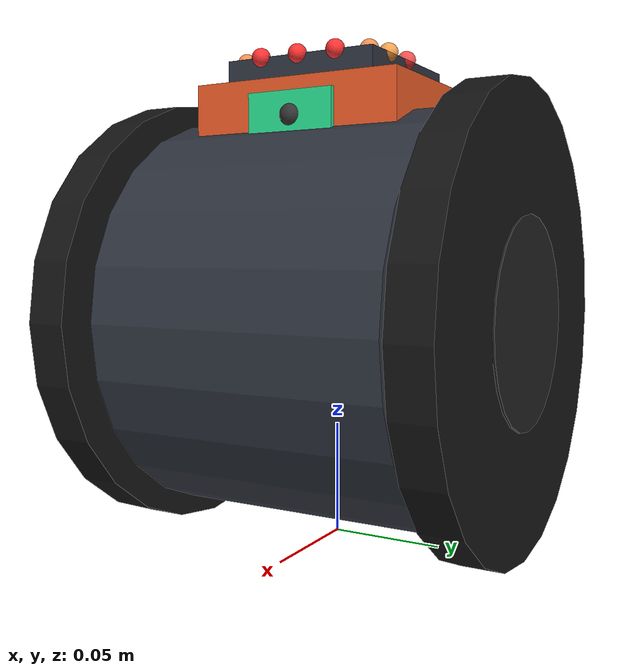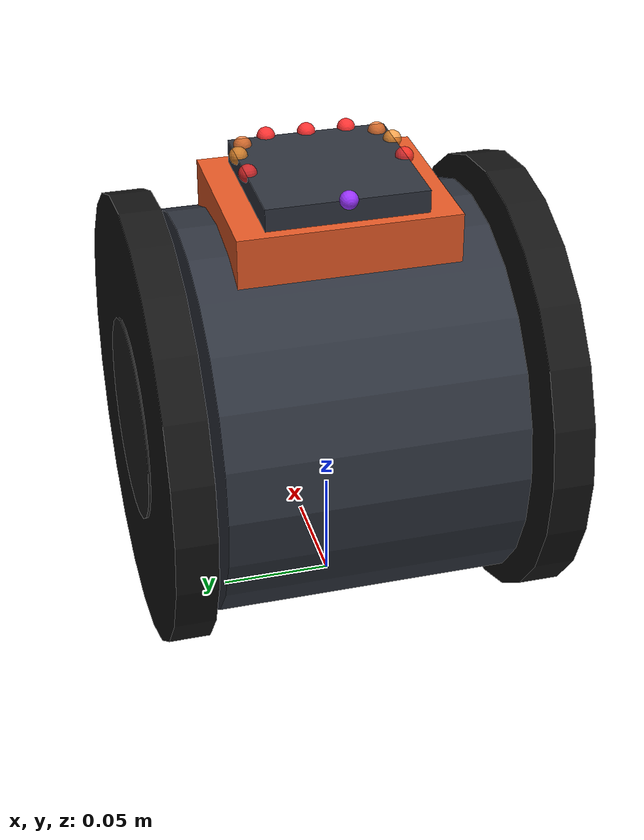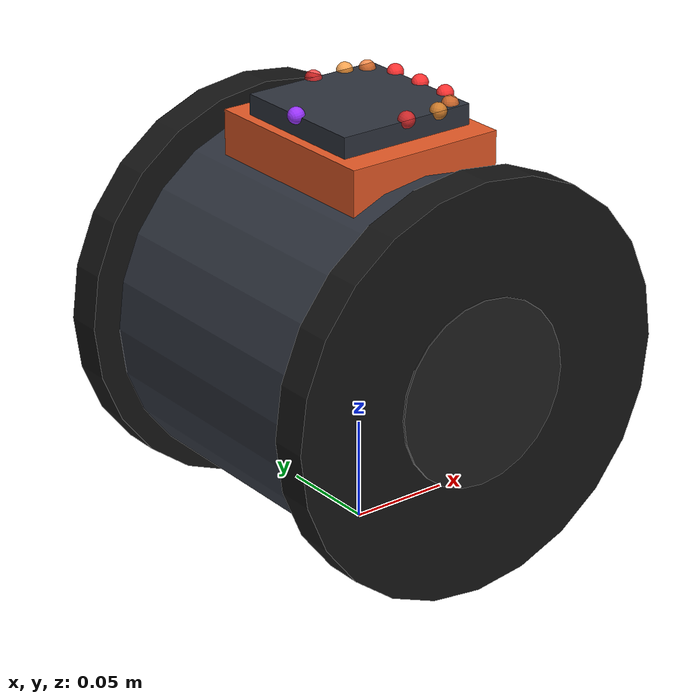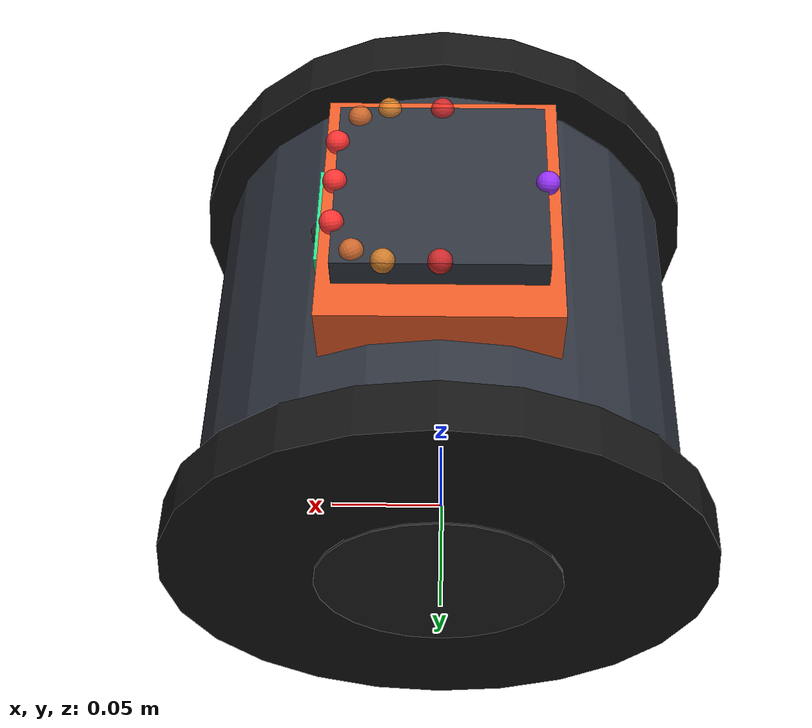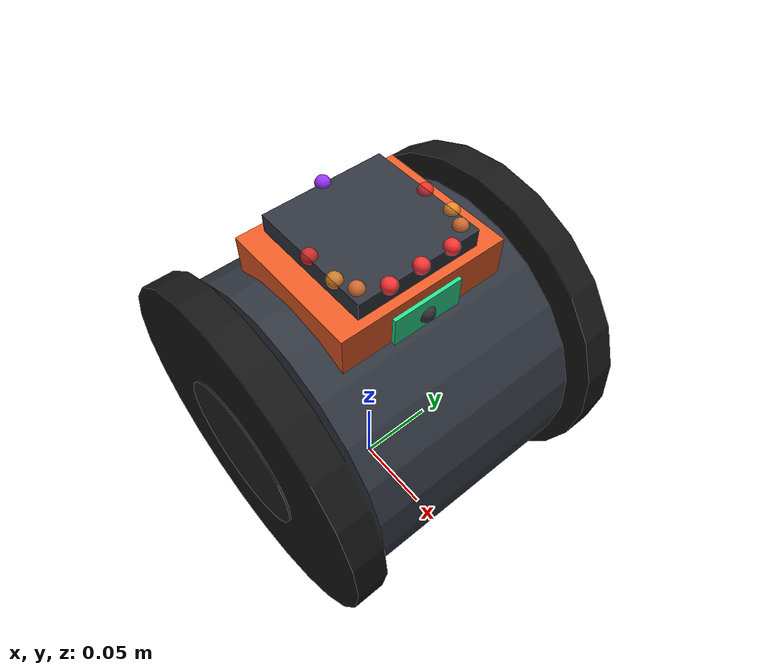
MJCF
<mujoco model="deskbot">

  <compiler angle="radian"/>

  <default>
    <joint damping="0.008" armature="0.001"/>
    <geom friction="1.2 0.005 0.001" condim="4" contype="1" conaffinity="1"
          solref="0.005 1.0"/>
    <motor ctrlrange="-3.0 3.0"/>

    <default class="wheel">
      <joint damping="0.003"/>
      <geom material="tire" mass="0.05"/>
    </default>
    <default class="hub">
      <geom material="wheel" contype="0" conaffinity="0" mass="0.005"/>
    </default>
    <default class="visual">
      <geom contype="0" conaffinity="0" mass="0.001"/>
    </default>
  </default>

  <asset>
    <material name="chassis" rgba="0.18 0.20 0.24 1" specular="0.6" shininess="0.4"/>
    <material name="body"    rgba="0.22 0.50 0.72 1" specular="0.5" shininess="0.3"/>
    <material name="accent"  rgba="0.90 0.35 0.15 1" specular="0.4" shininess="0.2"/>
    <material name="screen"  rgba="0.15 0.85 0.55 1" specular="0.8" shininess="0.9"
              emission="0.4"/>
    <material name="wheel"   rgba="0.12 0.12 0.12 1" specular="0.2" shininess="0.05"/>
    <material name="tire"    rgba="0.08 0.08 0.08 1" specular="0.05" shininess="0.01"/>
  </asset>

  <worldbody>
    <body name="chassis" pos="0 0 0.10">
      <joint type="free"/>

      <geom name="base" type="cylinder" size="0.09 0.065"
            pos="0 0 0" euler="1.5708 0 0"
            mass="0.05" material="chassis"/>

      <!-- Main body — cubic block, straddles axle -->
      <geom name="body" type="box" size="0.05 0.058 0.055"
            pos="0 0 0.015" mass="0.35" material="body"/>

      <!-- Head (battery + electronics → heavy) -->
      <geom name="head" type="box" size="0.04 0.048 0.016"
            pos="0 0 0.086" mass="0.18" material="accent"/>

      <geom name="sensor_pod" type="box" size="0.035 0.035 0.005"
            pos="0 0 0.107" mass="0.02" material="chassis"/>

      <!-- Front screen / LED indicator -->
      <geom name="screen" type="box" size="0.001 0.035 0.030"
            pos="0.051 0 0.015" material="screen" class="visual"/>

      <!-- Face indicator on head -->
      <geom name="face" type="box" size="0.001 0.020 0.010"
            pos="0.041 0 0.086" material="screen" class="visual"/>

      <!-- IMU sensor site (near CoM) -->
      <site name="imu" pos="0 0 0.0" size="0.003" rgba="1 0 0 0.5"/>

      <!-- Camera mount site (on head, forward-facing) -->
      <site name="cam_mount" pos="0.04 0 0.086" zaxis="1 0 0" size="0.005"
            rgba="0.2 0.2 0.2 1"/>

      <!-- ── Fovea: 3 parallel forward beams, covering the robot's width ── -->
      <!-- C: fovea center — yaw 0°, pitch 6.05° down -->
      <site name="rf_C"  pos="0.035  0.000 0.112"
            zaxis="0.9944 0 -0.1054"
            size="0.004" rgba="1 0.2 0.2 0.9"/>
      <site name="rf_FL" pos="0.035  0.018 0.112"
            zaxis="0.9906 0.0867 -0.1054"
            size="0.004" rgba="1 0.2 0.2 0.9"/>
      <!-- FR: fovea right — mirror of FL, -5° yaw -->
      <site name="rf_FR" pos="0.035 -0.018 0.112"
            zaxis="0.9906 -0.0867 -0.1054"
            size="0.004" rgba="1 0.2 0.2 0.9"/>

      <!-- ── Mid-forward: ±25° ── -->
      <!-- L: mid-forward-left +25° — cos25=0.9063, sin25=0.4226 -->
      <site name="rf_L"  pos="0.028  0.030 0.112"
            zaxis="0.9012 0.4203 -0.1054"
            size="0.004" rgba="1 0.5 0.2 0.8"/>
      <!-- R: mid-forward-right -25° -->
      <site name="rf_R"  pos="0.028 -0.030 0.112"
            zaxis="0.9012 -0.4203 -0.1054"
            size="0.004" rgba="1 0.5 0.2 0.8"/>

      <!-- ── Wide-forward: ±55° (kept from the earlier sweep optimum) ── -->
      <!-- WL: wide-forward-left +55° — cos55=0.5736, sin55=0.8192 -->
      <site name="rf_WL" pos="0.018  0.034 0.112"
            zaxis="0.5704 0.8146 -0.1054"
            size="0.004" rgba="1 0.6 0.2 0.8"/>
      <!-- WR: wide-forward-right -55° -->
      <site name="rf_WR" pos="0.018 -0.034 0.112"
            zaxis="0.5704 -0.8146 -0.1054"
            size="0.004" rgba="1 0.6 0.2 0.8"/>

      <!-- ── Pure side: ±90° (corridor tracking) ── -->
      <!-- SL: side-left +90° -->
      <site name="rf_SL" pos="0.000  0.034 0.112"
            zaxis="0 0.9944 -0.1054"
            size="0.004" rgba="1 0.2 0.2 0.8"/>
      <!-- SR: side-right -90° -->
      <site name="rf_SR" pos="0.000 -0.034 0.112"
            zaxis="0 -0.9944 -0.1054"
            size="0.004" rgba="1 0.2 0.2 0.8"/>

      <!-- ── Rear: single 180° beam ── -->
      <!-- B: rear-center, looking backward -->
      <site name="rf_B"  pos="-0.035 0.000 0.112"
            zaxis="-0.9944 0 -0.1054"
            size="0.004" rgba="0.6 0.2 1 0.9"/>

      <!-- Left wheel (R=10cm, tight to body: 13mm gap) -->
      <body name="wheel_L" pos="0 0.08 0">
        <joint name="wheel_L" type="hinge" axis="0 1 0" class="wheel"/>
        <geom name="tire_L" type="cylinder" size="0.10 0.009"
              euler="1.5708 0 0" class="wheel"/>
        <geom name="hub_L" type="cylinder" size="0.045 0.01"
              euler="1.5708 0 0" class="hub"/>
      </body>

      <!-- Right wheel (R=10cm, tight to body: 13mm gap) -->
      <body name="wheel_R" pos="0 -0.08 0">
        <joint name="wheel_R" type="hinge" axis="0 1 0" class="wheel"/>
        <geom name="tire_R" type="cylinder" size="0.10 0.009"
              euler="1.5708 0 0" class="wheel"/>
        <geom name="hub_R" type="cylinder" size="0.045 0.01"
              euler="1.5708 0 0" class="hub"/>
      </body>

      <!-- Robot-attached cameras -->
      <camera name="follow" mode="track" pos="0.8 -0.5 0.4"
              xyaxes="0.6 1 0 -0.2 0 1"/>
      <camera name="onboard" mode="fixed" pos="0.06 0 0.10"
              xyaxes="0 -1 0 0 0 1"/>
    </body>
  </worldbody>

  <actuator>
    <motor joint="wheel_L" name="motor_L" gear="1"/>
    <motor joint="wheel_R" name="motor_R" gear="1"/>
  </actuator>

  <sensor>
    <!-- IMU (MPU6050-like): accelerometer + gyroscope -->
    <accelerometer name="accel" site="imu"/>
    <gyro          name="gyro"  site="imu"/>
    <!-- Wheel encoders: angular velocity -->
    <jointvel name="enc_L" joint="wheel_L"/>
    <jointvel name="enc_R" joint="wheel_R"/>

  </sensor>
</mujoco>
